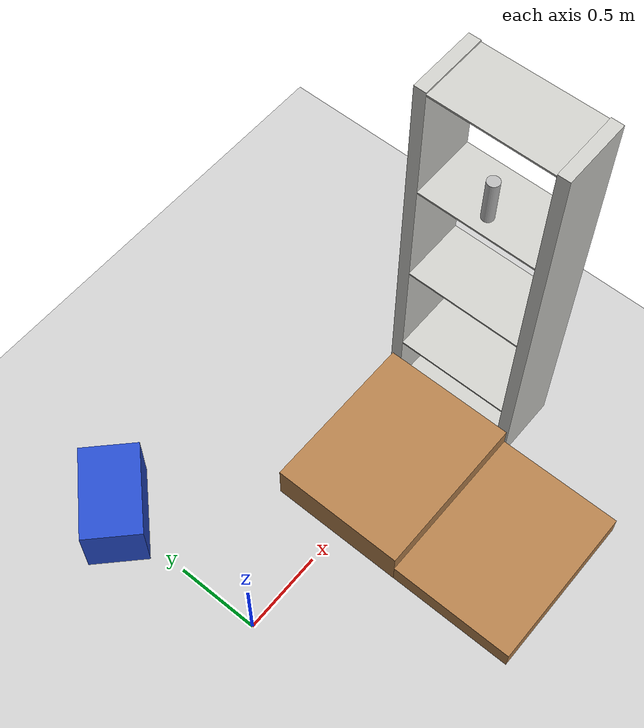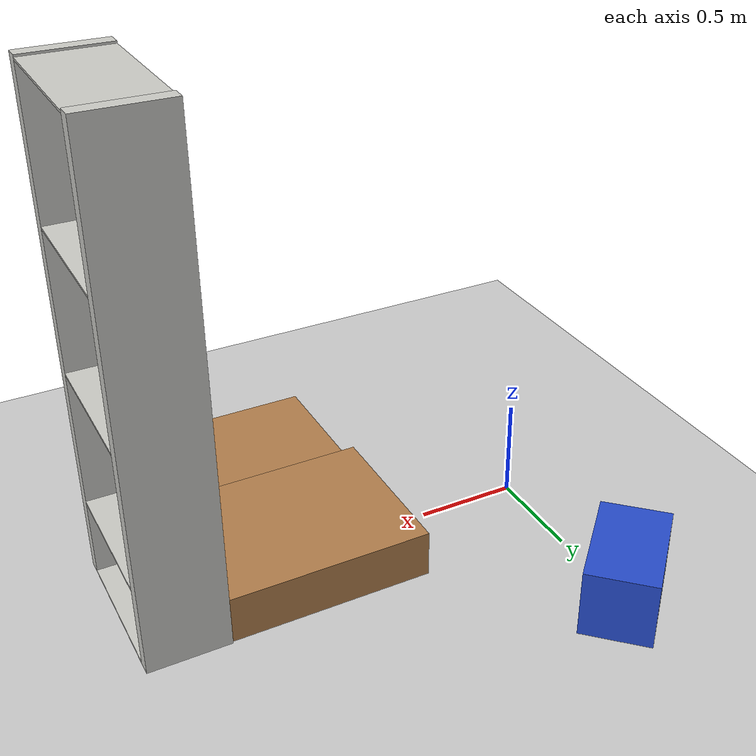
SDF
<sdf version="1.4">
 <world name="default">
  <gravity>0 0 -9.81</gravity>
  <model name="ground_plane">
   <static>true</static>
   <link name="link">
    <collision name="collision">
     <geometry><plane><normal>0 0 1</normal><size>100 100</size></plane></geometry>
     <surface><friction><ode><mu>1</mu><mu2>1</mu2></ode></friction></surface>
    </collision>
    <visual name="visual">
     <cast_shadows>false</cast_shadows>
     <geometry><plane><normal>0 0 1</normal><size>100 100</size></plane></geometry>
     <material>
      <script><uri>file://media/materials/scripts/gazebo.material</uri><name>Gazebo/Grey</name></script>
     </material>
    </visual>
   </link>
  </model>
  <model name="pallet_1">
   <pose>1.2 -0.785 0.0 0 0 0</pose>
   <static>true</static>
   <link name="pallet_1">
    <pose>0.0 0.0 0.065 0 0 1.57</pose>
    <collision name="pallet_1_Collision"><geometry><box><size>0.76 1.0 0.13</size></box></geometry></collision>
    <visual name="pallet_1_Visual">
     <geometry><box><size>0.76 1.0 0.13</size></box></geometry>
     <material>
      <script><uri>file://media/materials/scripts/gazebo.material</uri><name>Gazebo/WoodPallet</name></script>
      <ambient>1 1 1 1</ambient>
     </material>
     <meta><layer>0</layer></meta>
    </visual>
   </link>
  </model>
  <model name="pallet_2">
   <pose>1.2 0.0 0.0 0 0 0</pose>
   <static>true</static>
   <link name="pallet_2">
    <pose>0.0 0.0 0.12 0 0 1.57</pose>
    <collision name="pallet_2_Collision"><geometry><box><size>0.81 1.0 0.24</size></box></geometry></collision>
    <visual name="pallet_2_Visual">
     <geometry><box><size>0.81 1.0 0.24</size></box></geometry>
     <material>
      <script><uri>file://media/materials/scripts/gazebo.material</uri><name>Gazebo/WoodPallet</name></script>
      <ambient>1 1 1 1</ambient>
     </material>
     <meta><layer>0</layer></meta>
    </visual>
   </link>
  </model>
  <model name="shelf">
   <pose>2.1 0.0 0.0 0 0 -1.57</pose>
   <static>true</static>
   <link name="link">
    <inertial><mass>1.0</mass></inertial>
    <collision name="left_side">
     <pose>0.38 -0.2 1.25 0 0 0</pose>
     <geometry><box><size>0.07 0.4 2.5</size></box></geometry>
    </collision>
    <visual name="visual2">
     <pose>0.38 -0.2 1.25 0 0 0</pose>
     <geometry><box><size>0.07 0.4 2.5</size></box></geometry>
     <material>
      <script><uri>file://media/materials/scripts/gazebo.material</uri><name>Gazebo/CeilingTiled</name></script>
     </material>
    </visual>
    <collision name="right_side">
     <pose>-0.38 -0.2 1.25 0 0 0</pose>
     <geometry><box><size>0.07 0.4 2.5</size></box></geometry>
    </collision>
    <visual name="visual3">
     <pose>-0.38 -0.2 1.25 0 0 0</pose>
     <geometry><box><size>0.07 0.4 2.5</size></box></geometry>
     <material>
      <script><uri>file://media/materials/scripts/gazebo.material</uri><name>Gazebo/CeilingTiled</name></script>
     </material>
    </visual>
    <collision name="bottom">
     <pose>0 -0.2 0.005 0 0 0</pose>
     <geometry><box><size>0.69 0.4 0.01</size></box></geometry>
    </collision>
    <visual name="visual4">
     <pose>0 -0.2 0.005 0 0 0</pose>
     <geometry><box><size>0.69 0.4 0.01</size></box></geometry>
     <material>
      <script><uri>file://media/materials/scripts/gazebo.material</uri><name>Gazebo/CeilingTiled</name></script>
     </material>
    </visual>
    <collision name="top">
     <pose>0 -0.2 2.485 0 0 0</pose>
     <geometry><box><size>0.69 0.4 0.01</size></box></geometry>
    </collision>
    <visual name="visual5">
     <pose>0 -0.2 2.485 0 0 0</pose>
     <geometry><box><size>0.69 0.4 0.01</size></box></geometry>
     <material>
      <script><uri>file://media/materials/scripts/gazebo.material</uri><name>Gazebo/CeilingTiled</name></script>
     </material>
    </visual>
    <collision name="low_shelf">
     <pose>0 -0.2 0.415 0 0 0</pose>
     <geometry><box><size>0.69 0.4 0.01</size></box></geometry>
    </collision>
    <visual name="visual6">
     <pose>0 -0.2 0.415 0 0 0</pose>
     <geometry><box><size>0.69 0.4 0.01</size></box></geometry>
     <material>
      <script><uri>file://media/materials/scripts/gazebo.material</uri><name>Gazebo/CeilingTiled</name></script>
     </material>
    </visual>
    <collision name="middle_shelf">
     <pose>0 -0.2 1.105 0 0 0</pose>
     <geometry><box><size>0.69 0.4 0.01</size></box></geometry>
    </collision>
    <visual name="visual7">
     <pose>0 -0.2 1.105 0 0 0</pose>
     <geometry><box><size>0.69 0.4 0.01</size></box></geometry>
     <material>
      <script><uri>file://media/materials/scripts/gazebo.material</uri><name>Gazebo/CeilingTiled</name></script>
     </material>
    </visual>
    <collision name="high_shelf">
     <pose>0 -0.2 1.795 0 0 0</pose>
     <geometry><box><size>0.69 0.4 0.01</size></box></geometry>
    </collision>
    <visual name="visual8">
     <pose>0 -0.2 1.795 0 0 0</pose>
     <geometry><box><size>0.69 0.4 0.01</size></box></geometry>
     <material>
      <script><uri>file://media/materials/scripts/gazebo.material</uri><name>Gazebo/CeilingTiled</name></script>
     </material>
    </visual>
   </link>
  </model>
  <model name="bottle">
   <pose>1.8 0.0 1.8 0 0 0</pose>
   <link name="bottle">
    <pose>0.0 0.0 0.135 0 0 0</pose>
    <inertial><mass>0.25</mass></inertial>
    <collision name="bottle_Collision">
     <geometry><cylinder><radius>0.035</radius><length>0.27</length></cylinder></geometry>
    </collision>
    <visual name="bottle_Visual">
     <geometry><cylinder><radius>0.035</radius><length>0.27</length></cylinder></geometry>
     <material>
      <script><uri>file://media/materials/scripts/gazebo.material</uri><name>Gazebo/PioneerBody</name></script>
     </material>
    </visual>
   </link>
  </model>
  <model name="box">
   <pose>0.0 1.0 0.0 0 0 0.8</pose>
   <static>true</static>
   <link name="box">
    <pose>0.0 0.0 0.1725 0 0 0.0</pose>
    <collision name="box_collision"><geometry><box><size>0.545 0.34 0.345</size></box></geometry></collision>
    <visual name="box_visual">
     <geometry><box><size>0.545 0.34 0.345</size></box></geometry>
     <material>
      <script><uri>file://media/materials/scripts/gazebo.material</uri><name>Gazebo/Blue</name></script>
     </material>
    </visual>
   </link>
  </model>
  <include><uri>model://sun</uri></include>
  <physics name="update_rate" type="ode">
   <real_time_update_rate>2000</real_time_update_rate>
   <max_step_size>0.0005</max_step_size>
   <max_contacts>5</max_contacts>
   <bullet>
    <solver><iters>100</iters><sor>1.55</sor></solver>
    <constraints><contact_surface_layer>0.2</contact_surface_layer><cfm>0.005</cfm><erp>0.2</erp></constraints>
   </bullet>
   <ode>
    <solver><type>quick</type><iters>50</iters><sor>1.20</sor></solver>
    <constraints>
     <contact_surface_layer>0.0002</contact_surface_layer>
     <contact_max_correcting_vel>500</contact_max_correcting_vel>
     <cfm>0.000001</cfm>
     <erp>0.3</erp>
    </constraints>
   </ode>
  </physics>
 </world>
</sdf>
